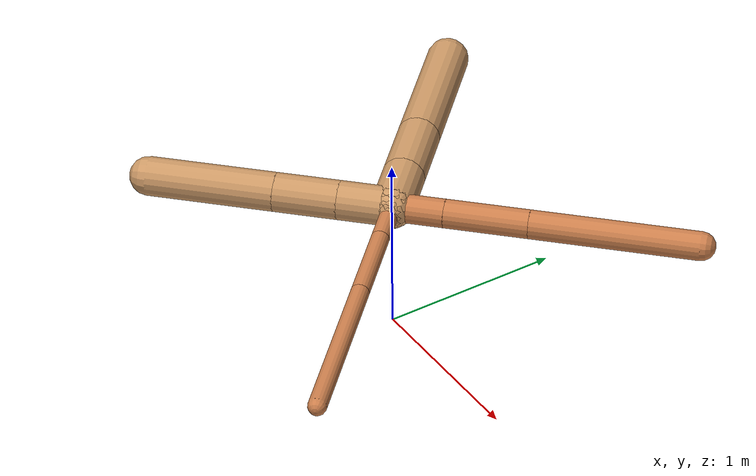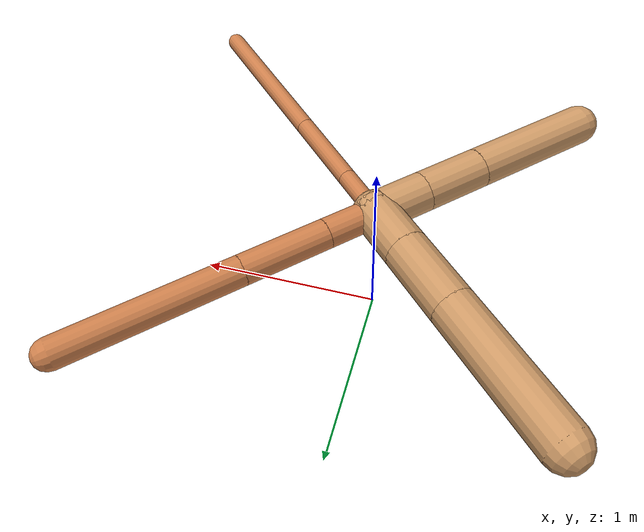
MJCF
<?xml version="1.0" ?>
<mujoco model="ant">

	<compiler angle="degree" coordinate="local" inertiafromgeom="true"/>

	<option integrator="RK4" timestep="0.01"/>

	<custom>

		<numeric data="0.0 0.0 0.55 1.0 0.0 0.0 0.0 0.0 1.0 0.0 -1.0 0.0 -1.0 0.0 1.0" name="init_qpos"/>

	</custom>

	<default>

		<joint armature="1" damping="1" limited="true"/>

		<geom conaffinity="0" condim="3" density="5.0" friction="1.5 0.1 0.1" margin="0.01" rgba="0.8 0.6 0.4 1"/>

	</default>

	<worldbody>

		<body name="torso" pos="0 0 0.75">

			<geom name="torso_geom" pos="0 0 0" size="0.11593828857882849" type="sphere"/>

			<!--joint armature="0" damping="0" limited="false" margin="0.01" name="root" pos="0 0 0" type="free"/-->

			<body name="front_left_leg" pos="0 0 0">

				<geom fromto="0 0 0 0.2 0.2 0" name="aux_1_geom" size="0.07761910506908731" type="capsule" rgba=".8 .5 .3 1"/>

				<body name="aux_1" pos="0.2 0.2 0">

					<joint axis="0 0 1" name="hip_1" pos="0.0 0.0 0.0" range="-40 40" type="hinge"/>

					<geom fromto="0 0 0 0.3189099569528691 0.3189099569528691 0" name="left_leg_geom" size="0.07761910506908731" type="capsule" rgba=".8 .5 .3 1"/>

					<body pos="0.3189099569528691 0.3189099569528691 0" name="front_left_foot">

						<joint axis="-1 1 0" name="ankle_1" pos="0.0 0.0 0.0" range="30 100" type="hinge"/>

						<geom fromto="0 0 0 0.6378199139057382 0.6378199139057382 0" name="left_ankle_geom" size="0.07761910506908731" type="capsule" rgba=".8 .5 .3 1"/>

					</body>

				</body>

			</body>

			<body name="front_right_leg" pos="0 0 0">

				<geom fromto="0 0 0 -0.2 0.2 0" name="aux_2_geom" size="0.11654714793092988" type="capsule"/>

				<body name="aux_2" pos="-0.2 0.2 0">

					<joint axis="0 0 1" name="hip_2" pos="0.0 0.0 0.0" range="-40 40" type="hinge"/>

					<geom fromto="0 0 0 -0.27028962878368157 0.27028962878368157 0" name="right_leg_geom" size="0.11654714793092988" type="capsule"/>

					<body pos="-0.27028962878368157 0.27028962878368157 0" name="front_right_foot">

						<joint axis="1 1 0" name="ankle_2" pos="0.0 0.0 0.0" range="-100 -30" type="hinge"/>

						<geom fromto="0 0 0 -0.5405792575673631 0.5405792575673631 0" name="right_ankle_geom" size="0.11654714793092988" type="capsule"/>

					</body>

				</body>

			</body>

			<body name="left_back_leg" pos="0 0 0">

				<geom fromto="0 0 0 -0.2 -0.2 0" name="aux_3_geom" size="0.10603290562117142" type="capsule"/>

				<body name="aux_3" pos="-0.2 -0.2 0">

					<joint axis="0 0 1" name="hip_3" pos="0.0 0.0 0.0" range="-40 40" type="hinge"/>

					<geom fromto="0 0 0 -0.24457477745315634 -0.24457477745315634 0" name="back_leg_geom" size="0.10603290562117142" type="capsule"/>

					<body pos="-0.24457477745315634 -0.24457477745315634 0" name="left_back_foot">

						<joint axis="-1 1 0" name="ankle_3" pos="0.0 0.0 0.0" range="-100 -30" type="hinge"/>

						<geom fromto="0 0 0 -0.4891495549063127 -0.4891495549063127 0" name="third_ankle_geom" size="0.10603290562117142" type="capsule"/>

					</body>

				</body>

			</body>

			<body name="right_back_leg" pos="0 0 0">

				<geom fromto="0 0 0 0.2 -0.2 0" name="aux_4_geom" size="0.04881609312280194" type="capsule" rgba=".8 .5 .3 1"/>

				<body name="aux_4" pos="0.2 -0.2 0">

					<joint axis="0 0 1" name="hip_4" pos="0.0 0.0 0.0" range="-40 40" type="hinge"/>

					<geom fromto="0 0 0 0.32898308612194804 -0.32898308612194804 0" name="rightback_leg_geom" size="0.04881609312280194" type="capsule" rgba=".8 .5 .3 1"/>

					<body pos="0.32898308612194804 -0.32898308612194804 0" name="right_back_foot">

						<joint axis="1 1 0" name="ankle_4" pos="0.0 0.0 0.0" range="30 100" type="hinge"/>

						<geom fromto="0 0 0 0.6579661722438961 -0.6579661722438961 0" name="fourth_ankle_geom" size="0.04881609312280194" type="capsule" rgba=".8 .5 .3 1"/>

					</body>

				</body>

			</body>

		</body>

	</worldbody>

	<actuator>

		<motor ctrllimited="true" ctrlrange="-1.0 1.0" joint="hip_4" gear="150"/>

		<motor ctrllimited="true" ctrlrange="-1.0 1.0" joint="ankle_4" gear="150"/>

		<motor ctrllimited="true" ctrlrange="-1.0 1.0" joint="hip_1" gear="150"/>

		<motor ctrllimited="true" ctrlrange="-1.0 1.0" joint="ankle_1" gear="150"/>

		<motor ctrllimited="true" ctrlrange="-1.0 1.0" joint="hip_2" gear="150"/>

		<motor ctrllimited="true" ctrlrange="-1.0 1.0" joint="ankle_2" gear="150"/>

		<motor ctrllimited="true" ctrlrange="-1.0 1.0" joint="hip_3" gear="150"/>

		<motor ctrllimited="true" ctrlrange="-1.0 1.0" joint="ankle_3" gear="150"/>

	</actuator>

</mujoco>
